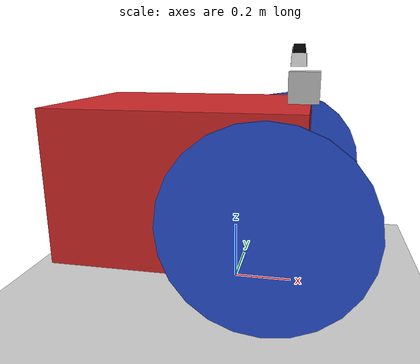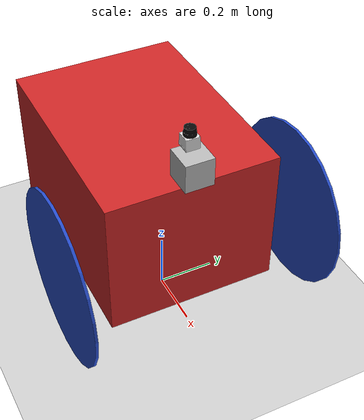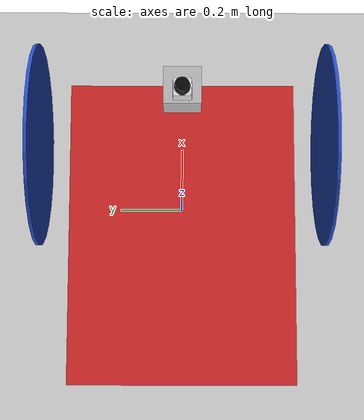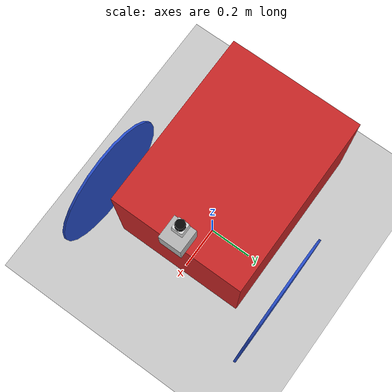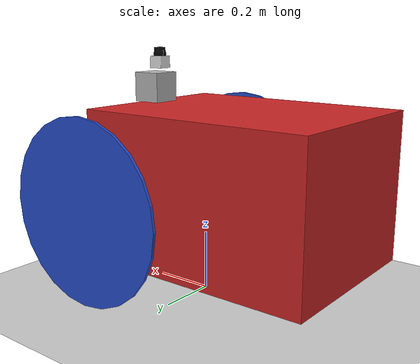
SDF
<?xml version="1.0" ?>
<sdf version="1.4">
  <world name="default">
    <include>
      <uri>model://ground_plane</uri>
    </include>

    <include>
      <uri>model://sun</uri>
    </include>

    <!-- reference to your plugin -->
    <plugin name="gazebo_tutorials" filename="libhello_world_plugin.so"/>

    <model name="diff_drive_robot">
      <pose>0 0 0.39 0 0 0</pose>
      <include>
       <uri>model://DiffDrive</uri>
      </include>

      <!-- Attach the plugin to this model -->
      <plugin name="diff_drive_robot_controller" filename="libhello_model_plugin.so">
      </plugin>
    </model>

  </world>
</sdf>

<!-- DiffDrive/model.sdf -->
<sdf version='1.6'>
  <model name='DiffDrive'>
    <link name='govde'>
      <pose frame=''>-0.155219 1.3e-05 -0.00015 0 -0 0</pose>
      <inertial>
        <mass>1.5</mass>
        <inertia>
          <ixx>0.32867</ixx>
          <ixy>0</ixy>
          <ixz>0</ixz>
          <iyy>0.0698575</iyy>
          <iyz>0</iyz>
          <izz>0.371164</izz>
        </inertia>
        <pose frame=''>0 0 0 0 -0 0</pose>
      </inertial>
      <self_collide>0</self_collide>
      <kinematic>0</kinematic>
      <gravity>1</gravity>
      <visual name='visual'>
        <pose frame=''>0 0 0 0 -0 0</pose>
        <geometry>
          <box>
            <size>0.8 0.6 0.500001</size>
          </box>
        </geometry>
        <material>
          <lighting>1</lighting>
          <script>
            <uri>file://media/materials/scripts/gazebo.material</uri>
            <name>Gazebo/Red</name>
          </script>
          <ambient>0.5 0 0 1</ambient>
          <diffuse>0.5 1 1 1</diffuse>
          <specular>0.01 0.01 0.01 1</specular>
          <emissive>0 0 0 1</emissive>
          <shader type='vertex'>
            <normal_map>__default__</normal_map>
          </shader>
        </material>
        <cast_shadows>1</cast_shadows>
        <transparency>0</transparency>
      </visual>
      <collision name='collision'>
        <laser_retro>0</laser_retro>
        <max_contacts>10</max_contacts>
        <pose frame=''>0 0 0 0 -0 0</pose>
        <geometry>
          <box>
            <size>0.8 0.6 0.499999</size>
          </box>
        </geometry>
        <surface>
          <friction>
            <ode>
              <mu>1</mu>
              <mu2>1</mu2>
              <fdir1>0 0 0</fdir1>
              <slip1>0</slip1>
              <slip2>0</slip2>
            </ode>
            <torsional>
              <coefficient>1</coefficient>
              <patch_radius>0</patch_radius>
              <surface_radius>0</surface_radius>
              <use_patch_radius>1</use_patch_radius>
              <ode>
                <slip>0</slip>
              </ode>
            </torsional>
          </friction>
          <bounce>
            <restitution_coefficient>0</restitution_coefficient>
            <threshold>1e+06</threshold>
          </bounce>
          <contact>
            <collide_without_contact>0</collide_without_contact>
            <collide_without_contact_bitmask>1</collide_without_contact_bitmask>
            <collide_bitmask>1</collide_bitmask>
            <ode>
              <soft_cfm>0</soft_cfm>
              <soft_erp>0.2</soft_erp>
              <kp>1e+13</kp>
              <kd>1</kd>
              <max_vel>0.01</max_vel>
              <min_depth>0</min_depth>
            </ode>
            <bullet>
              <split_impulse>1</split_impulse>
              <split_impulse_penetration_threshold>-0.01</split_impulse_penetration_threshold>
              <soft_cfm>0</soft_cfm>
              <soft_erp>0.2</soft_erp>
              <kp>1e+13</kp>
              <kd>1</kd>
            </bullet>
          </contact>
        </surface>
      </collision>
    </link>
    <link name='hokuyo::link'>
      <pose frame=''>0.2 0 0.4 0 -0 0</pose>
      <inertial>
        <mass>0.1</mass>
        <inertia>
          <ixx>1</ixx>
          <ixy>0</ixy>
          <ixz>0</ixz>
          <iyy>1</iyy>
          <iyz>0</iyz>
          <izz>1</izz>
        </inertia>
        <pose frame=''>0 0 0 0 -0 0</pose>
      </inertial>
      <self_collide>0</self_collide>
      <kinematic>0</kinematic>
      <sensor name='laser' type='ray'>
        <pose frame=''>0.01 0 0.03 0 -0 0</pose>
        <ray>
          <scan>
            <horizontal>
              <samples>1080</samples>
              <resolution>1</resolution>
              <min_angle>-2.26889</min_angle>
              <max_angle>2.2689</max_angle>
            </horizontal>
            <vertical>
              <samples>1</samples>
              <min_angle>0</min_angle>
              <max_angle>0</max_angle>
            </vertical>
          </scan>
          <range>
            <min>0.08</min>
            <max>10</max>
            <resolution>0.01</resolution>
          </range>
        </ray>
    <plugin name="laser" filename="libgazebo_ros_laser.so">

        <topicName>/scan</topicName>

        <frameName>hokuyo_link</frameName>

      </plugin>
        <always_on>1</always_on>
        <update_rate>30</update_rate>
        <visualize>0</visualize>
      </sensor>
      <gravity>1</gravity>
      <visual name='visual'>
        <geometry>
          <mesh>
            <uri>model://hokuyo/meshes/hokuyo.dae</uri>
          </mesh>
        </geometry>
        <pose frame=''>0 0 0 0 -0 0</pose>
        <cast_shadows>1</cast_shadows>
        <transparency>0</transparency>
        <material>
          <shader type='vertex'>
            <normal_map>__default__</normal_map>
          </shader>
        </material>
      </visual>
    </link>
    <link name='sag_tekerlek'>
      <pose frame=''>0.144781 -0.424987 -0.05015 1.5707 -0 0</pose>
      <inertial>
        <mass>1.0</mass>
        <inertia>
          <ixx>0.145833</ixx>
          <ixy>0</ixy>
          <ixz>0</ixz>
          <iyy>0.145833</iyy>
          <iyz>0</iyz>
          <izz>0.125</izz>
        </inertia>
        <pose frame=''>0 0 0 0 -0 0</pose>
      </inertial>
      <self_collide>0</self_collide>
      <kinematic>0</kinematic>
      <gravity>1</gravity>
      <visual name='visual'>
        <pose frame=''>0 0 0 0 -0 0</pose>
        <geometry>
          <cylinder>
            <radius>0.3</radius>
            <length>0.01</length>
          </cylinder>
        </geometry>
        <material>
          <lighting>1</lighting>
          <script>
            <uri>file://media/materials/scripts/gazebo.material</uri>
            <name>Gazebo/Blue</name>
          </script>
          <ambient>0 0 0.5 1</ambient>
          <diffuse>1 1 0.5 1</diffuse>
          <specular>0.01 0.01 0.01 1</specular>
          <emissive>0 0 0 1</emissive>
          <shader type='vertex'>
            <normal_map>__default__</normal_map>
          </shader>
        </material>
        <cast_shadows>1</cast_shadows>
        <transparency>0</transparency>
      </visual>
      <collision name='collision'>
        <laser_retro>0</laser_retro>
        <max_contacts>10</max_contacts>
        <pose frame=''>0 0 0 0 -0 0</pose>
        <geometry>
          <cylinder>
            <radius>0.3</radius>
            <length>0.01</length>
          </cylinder>
        </geometry>
        <surface>
          <friction>
            <ode>
              <mu>1000</mu>
              <mu2>1000</mu2>
              <fdir1>0 0 0</fdir1>
              <slip1>0</slip1>
              <slip2>0</slip2>
            </ode>
            <torsional>
              <coefficient>1</coefficient>
              <patch_radius>0</patch_radius>
              <surface_radius>0</surface_radius>
              <use_patch_radius>1</use_patch_radius>
              <ode>
                <slip>0</slip>
              </ode>
            </torsional>
          </friction>
          <bounce>
            <restitution_coefficient>0</restitution_coefficient>
            <threshold>1e+06</threshold>
          </bounce>
          <contact>
            <collide_without_contact>0</collide_without_contact>
            <collide_without_contact_bitmask>1</collide_without_contact_bitmask>
            <collide_bitmask>1</collide_bitmask>
            <ode>
              <soft_cfm>0</soft_cfm>
              <soft_erp>0.2</soft_erp>
              <kp>1e+13</kp>
              <kd>1</kd>
              <max_vel>0.01</max_vel>
              <min_depth>0</min_depth>
            </ode>
            <bullet>
              <split_impulse>1</split_impulse>
              <split_impulse_penetration_threshold>-0.01</split_impulse_penetration_threshold>
              <soft_cfm>0</soft_cfm>
              <soft_erp>0.2</soft_erp>
              <kp>1e+13</kp>
              <kd>1</kd>
            </bullet>
          </contact>
        </surface>
      </collision>
    </link>
    <link name='sarhos_tekerlek'>
      <pose frame=''>-0.355219 1.3e-05 -0.15015 0 -0 0</pose>
      <inertial>
        <mass>1.0</mass>
        <inertia>
          <ixx>0.1</ixx>
          <ixy>0</ixy>
          <ixz>0</ixz>
          <iyy>0.1</iyy>
          <iyz>0</iyz>
          <izz>0.1</izz>
        </inertia>
        <pose frame=''>0 0 0 0 -0 0</pose>
      </inertial>
      <self_collide>0</self_collide>
      <kinematic>0</kinematic>
      <gravity>1</gravity>
      <visual name='visual'>
        <pose frame=''>0 0 0 0 -0 0</pose>
        <geometry>
          <sphere>
            <radius>0.2</radius>
          </sphere>
        </geometry>
        <material>
          <lighting>1</lighting>
          <script>
            <uri>file://media/materials/scripts/gazebo.material</uri>
            <name>Gazebo/Blue</name>
          </script>
          <ambient>0.3 0.3 0.3 1</ambient>
          <diffuse>0.7 0.7 0.7 1</diffuse>
          <specular>0.01 0.01 0.01 1</specular>
          <emissive>0 0 0 1</emissive>
          <shader type='vertex'>
            <normal_map>__default__</normal_map>
          </shader>
        </material>
        <cast_shadows>1</cast_shadows>
        <transparency>0</transparency>
      </visual>
      <collision name='collision'>
        <laser_retro>0</laser_retro>
        <max_contacts>10</max_contacts>
        <pose frame=''>0 0 0 0 -0 0</pose>
        <geometry>
          <sphere>
            <radius>0.2</radius>
          </sphere>
        </geometry>
        <surface>
          <friction>
            <ode>
              <mu>1000</mu>
              <mu2>1000</mu2>
              <fdir1>0 0 0</fdir1>
              <slip1>0</slip1>
              <slip2>0</slip2>
            </ode>
            <torsional>
              <coefficient>1</coefficient>
              <patch_radius>0</patch_radius>
              <surface_radius>0</surface_radius>
              <use_patch_radius>1</use_patch_radius>
              <ode>
                <slip>0</slip>
              </ode>
            </torsional>
          </friction>
          <bounce>
            <restitution_coefficient>0</restitution_coefficient>
            <threshold>1e+06</threshold>
          </bounce>
          <contact>
            <collide_without_contact>0</collide_without_contact>
            <collide_without_contact_bitmask>1</collide_without_contact_bitmask>
            <collide_bitmask>1</collide_bitmask>
            <ode>
              <soft_cfm>0</soft_cfm>
              <soft_erp>0.2</soft_erp>
              <kp>1e+13</kp>
              <kd>1</kd>
              <max_vel>0.01</max_vel>
              <min_depth>0</min_depth>
            </ode>
            <bullet>
              <split_impulse>1</split_impulse>
              <split_impulse_penetration_threshold>-0.01</split_impulse_penetration_threshold>
              <soft_cfm>0</soft_cfm>
              <soft_erp>0.2</soft_erp>
              <kp>1e+13</kp>
              <kd>1</kd>
            </bullet>
          </contact>
        </surface>
      </collision>
    </link>
    <link name='sol_tekerlek'>
      <pose frame=''>0.144781 0.425013 -0.05015 -1.5707 -0 -0</pose>
      <inertial>
        <mass>1.0</mass>
        <inertia>
          <ixx>0.145833</ixx>
          <ixy>0</ixy>
          <ixz>0</ixz>
          <iyy>0.145833</iyy>
          <iyz>0</iyz>
          <izz>0.125</izz>
        </inertia>
        <pose frame=''>0 0 0 0 -0 0</pose>
      </inertial>
      <self_collide>0</self_collide>
      <kinematic>0</kinematic>
      <gravity>1</gravity>
      <visual name='visual'>
        <pose frame=''>0 0 0 0 -0 0</pose>
        <geometry>
          <cylinder>
            <radius>0.3</radius>
            <length>0.01</length>
          </cylinder>
        </geometry>
        <material>
          <lighting>1</lighting>
          <script>
            <uri>file://media/materials/scripts/gazebo.material</uri>
            <name>Gazebo/Blue</name>
          </script>
          <ambient>0 0 0.5 1</ambient>
          <diffuse>1 1 0.5 1</diffuse>
          <specular>0.01 0.01 0.01 1</specular>
          <emissive>0 0 0 1</emissive>
          <shader type='vertex'>
            <normal_map>__default__</normal_map>
          </shader>
        </material>
        <cast_shadows>1</cast_shadows>
        <transparency>0</transparency>
      </visual>
      <collision name='collision'>
        <laser_retro>0</laser_retro>
        <max_contacts>10</max_contacts>
        <pose frame=''>0 0 0 0 -0 0</pose>
        <geometry>
          <cylinder>
            <radius>0.3</radius>
            <length>0.01</length>
          </cylinder>
        </geometry>
        <surface>
          <friction>
            <ode>
              <mu>1000</mu>
              <mu2>1000</mu2>
              <fdir1>0 0 0</fdir1>
              <slip1>0</slip1>
              <slip2>0</slip2>
            </ode>
            <torsional>
              <coefficient>1</coefficient>
              <patch_radius>0</patch_radius>
              <surface_radius>0</surface_radius>
              <use_patch_radius>1</use_patch_radius>
              <ode>
                <slip>0</slip>
              </ode>
            </torsional>
          </friction>
          <bounce>
            <restitution_coefficient>0</restitution_coefficient>
            <threshold>1e+06</threshold>
          </bounce>
          <contact>
            <collide_without_contact>0</collide_without_contact>
            <collide_without_contact_bitmask>1</collide_without_contact_bitmask>
            <collide_bitmask>1</collide_bitmask>
            <ode>
              <soft_cfm>0</soft_cfm>
              <soft_erp>0.2</soft_erp>
              <kp>1e+13</kp>
              <kd>1</kd>
              <max_vel>0.01</max_vel>
              <min_depth>0</min_depth>
            </ode>
            <bullet>
              <split_impulse>1</split_impulse>
              <split_impulse_penetration_threshold>-0.01</split_impulse_penetration_threshold>
              <soft_cfm>0</soft_cfm>
              <soft_erp>0.2</soft_erp>
              <kp>1e+13</kp>
              <kd>1</kd>
            </bullet>
          </contact>
        </surface>
      </collision>
    </link>
    <model name='depth_camera'>
      <link name='link'>
        <pose frame=''>0 0 0.05 0 -0 0</pose>
        <inertial>
          <mass>0.1</mass>
          <inertia>
            <ixx>0.000166667</ixx>
            <iyy>0.000166667</iyy>
            <izz>0.000166667</izz>
            <ixy>0</ixy>
            <ixz>0</ixz>
            <iyz>0</iyz>
          </inertia>
        </inertial>
        <collision name='collision'>
          <geometry>
            <box>
              <size>0.1 0.1 0.1</size>
            </box>
          </geometry>
          <max_contacts>10</max_contacts>
          <surface>
            <contact>
              <ode/>
            </contact>
            <bounce/>
            <friction>
              <torsional>
                <ode/>
              </torsional>
              <ode/>
            </friction>
          </surface>
        </collision>
        <visual name='visual'>
          <geometry>
            <box>
              <size>0.1 0.1 0.1</size>
            </box>
          </geometry>
        </visual>
        <sensor name='camera' type='depth'>
          <camera name='__default__'>
            <horizontal_fov>1.047</horizontal_fov>
            <image>
              <width>320</width>
              <height>240</height>
            </image>
            <clip>
              <near>0.1</near>
              <far>10</far>
            </clip>
          </camera>
          <always_on>1</always_on>
          <update_rate>10</update_rate>
          <visualize>1</visualize>

          <plugin name="asus_frame_controller"     filename="libgazebo_ros_openni_kinect.so">

          <alwaysOn>true</alwaysOn>

          <cameraName>asus</cameraName>

          <imageTopicName>rgb/image_raw</imageTopicName>

        </plugin>
        </sensor>
        <self_collide>0</self_collide>
        <kinematic>0</kinematic>
        <gravity>1</gravity>
      </link>
      <pose frame=''>0.220876 -5.2e-05 0.2506 0 -0 0</pose>
    </model>
    <joint name='govde_kamera' type='fixed'>
      <parent>govde</parent>
      <child>depth_camera::link</child>
      <pose frame=''>0 0 0 0 -0 0</pose>
      <physics>
        <ode>
          <limit>
            <cfm>0</cfm>
            <erp>0.2</erp>
          </limit>
          <suspension>
            <cfm>0</cfm>
            <erp>0.2</erp>
          </suspension>
        </ode>
      </physics>
    </joint>
    <joint name='govde_lazer' type='revolute'>
      <parent>govde</parent>
      <child>hokuyo::link</child>
      <pose frame=''>0 0 0 0 -0 0</pose>
      <axis>
        <xyz>0 0 1</xyz>
        <use_parent_model_frame>0</use_parent_model_frame>
        <limit>
          <lower>0</lower>
          <upper>0</upper>
          <effort>-1</effort>
          <velocity>-1</velocity>
        </limit>
        <dynamics>
          <spring_reference>0</spring_reference>
          <spring_stiffness>0</spring_stiffness>
          <damping>0</damping>
          <friction>0</friction>
        </dynamics>
      </axis>
      <physics>
        <ode>
          <limit>
            <cfm>0</cfm>
            <erp>0.2</erp>
          </limit>
          <suspension>
            <cfm>0</cfm>
            <erp>0.2</erp>
          </suspension>
        </ode>
      </physics>
    </joint>
    <joint name='govde_sagteker' type='revolute'>
      <parent>govde</parent>
      <child>sag_tekerlek</child>
      <pose frame=''>0 0 0 0 -0 0</pose>
      <axis>
        <xyz>0 0 1</xyz>
        <use_parent_model_frame>0</use_parent_model_frame>
        <limit>
          <lower>-1.79769e+308</lower>
          <upper>1.79769e+308</upper>
          <effort>-1</effort>
          <velocity>-1</velocity>
        </limit>
        <dynamics>
          <spring_reference>0</spring_reference>
          <spring_stiffness>0</spring_stiffness>
          <damping>0</damping>
          <friction>0</friction>
        </dynamics>
      </axis>
      <physics>
        <ode>
          <limit>
            <cfm>0</cfm>
            <erp>0.2</erp>
          </limit>
          <suspension>
            <cfm>0</cfm>
            <erp>0.2</erp>
          </suspension>
        </ode>
      </physics>
    </joint>
    <joint name='govde_sarhos' type='ball'>
      <parent>govde</parent>
      <child>sarhos_tekerlek</child>
      <pose frame=''>0 0 0 0 -0 0</pose>
      <physics>
        <ode>
          <limit>
            <cfm>0</cfm>
            <erp>0.2</erp>
          </limit>
          <suspension>
            <cfm>0</cfm>
            <erp>0.2</erp>
          </suspension>
        </ode>
      </physics>
    </joint>
    <joint name='govde_solteker' type='revolute'>
      <parent>govde</parent>
      <child>sol_tekerlek</child>
      <pose frame=''>0 0 0 0 -0 0</pose>
      <axis>
        <xyz>0 0 1</xyz>
        <use_parent_model_frame>0</use_parent_model_frame>
        <limit>
          <lower>-1.79769e+308</lower>
          <upper>1.79769e+308</upper>
          <effort>-1</effort>
          <velocity>-1</velocity>
        </limit>
        <dynamics>
          <spring_reference>0</spring_reference>
          <spring_stiffness>0</spring_stiffness>
          <damping>0</damping>
          <friction>0</friction>
        </dynamics>
      </axis>
      <physics>
        <ode>
          <limit>
            <cfm>0</cfm>
            <erp>0.2</erp>
          </limit>
          <suspension>
            <cfm>0</cfm>
            <erp>0.2</erp>
          </suspension>
        </ode>
      </physics>
    </joint>
    <static>0</static>
    <allow_auto_disable>1</allow_auto_disable>
  </model>
</sdf>
